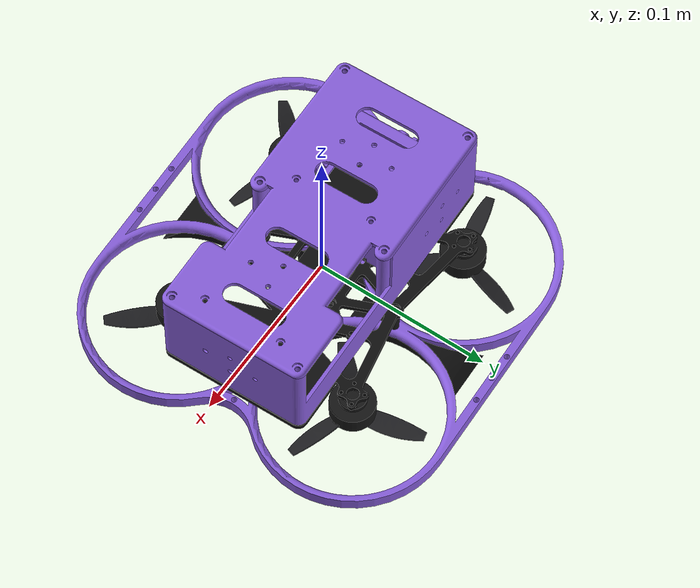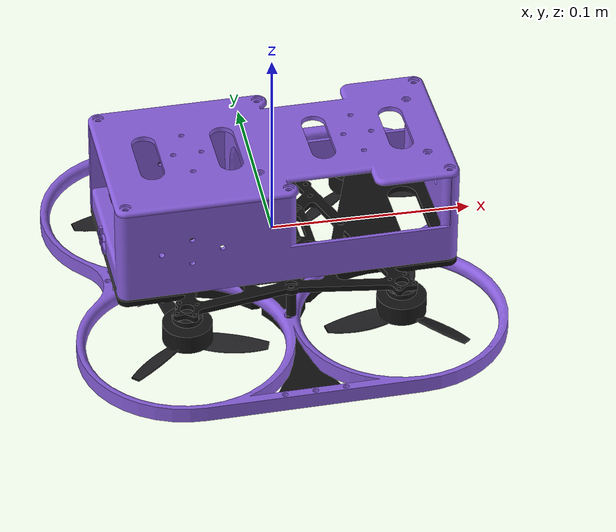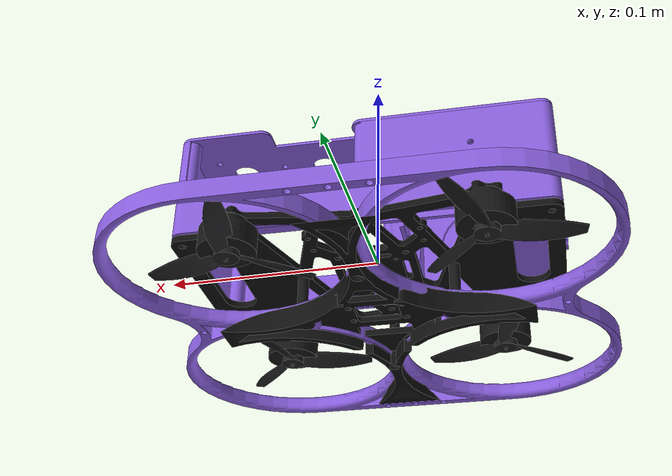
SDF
<?xml version="1.0" encoding="UTF-8"?>
<sdf version='1.9'>
  <model name='que'>
    <link name='base_link'>
      <inertial>
        <pose>0 0 0 0 0 0</pose>
        <mass>0.48</mass>
        <inertia>
          <ixx>1.346e-03</ixx>
          <iyy>1.735e-03</iyy>
          <izz>2.373e-03</izz>
          <ixy>-2.20e-05</ixy>
          <ixz>3.02e-05</ixz>
          <iyz>2.81e-06</iyz>
        </inertia>
      </inertial>
      <!-- 分组视觉：Gazebo 单 visual 只能单色，按零件分组配色（按真机照片：淡紫机身/保护圈、黑板材电机、烟色桨） -->
      <visual name='frame_visual'>
        <geometry><mesh><uri>model://que/meshes/frame.stl</uri><scale>0.001 0.001 0.001</scale></mesh></geometry>
        <material><ambient>0.02 0.02 0.02 1</ambient><diffuse>0.06 0.06 0.06 1</diffuse><specular>0.2 0.2 0.2 1</specular></material>
      </visual>
      <visual name='top_visual'>
        <geometry><mesh><uri>model://que/meshes/top.stl</uri><scale>0.001 0.001 0.001</scale></mesh></geometry>
        <material><ambient>0.21 0.15 0.34 1</ambient><diffuse>0.53 0.37 0.86 1</diffuse><specular>0.3 0.3 0.3 1</specular></material>
      </visual>
      <visual name='bay_visual'>
        <geometry><mesh><uri>model://que/meshes/bay.stl</uri><scale>0.001 0.001 0.001</scale></mesh></geometry>
        <material><ambient>0.21 0.15 0.34 1</ambient><diffuse>0.53 0.37 0.86 1</diffuse><specular>0.3 0.3 0.3 1</specular></material>
      </visual>
      <visual name='gear_visual'>
        <geometry><mesh><uri>model://que/meshes/gear.stl</uri><scale>0.001 0.001 0.001</scale></mesh></geometry>
        <material><ambient>0.02 0.02 0.02 1</ambient><diffuse>0.06 0.06 0.06 1</diffuse><specular>0.2 0.2 0.2 1</specular></material>
      </visual>
      <visual name='guard_visual'>
        <geometry><mesh><uri>model://que/meshes/guard.stl</uri><scale>0.001 0.001 0.001</scale></mesh></geometry>
        <material><ambient>0.21 0.15 0.34 1</ambient><diffuse>0.53 0.37 0.86 1</diffuse><specular>0.3 0.3 0.3 1</specular></material>
      </visual>
      <visual name='motors_visual'>
        <geometry><mesh><uri>model://que/meshes/motors.stl</uri><scale>0.001 0.001 0.001</scale></mesh></geometry>
        <material><ambient>0.03 0.03 0.03 1</ambient><diffuse>0.08 0.08 0.08 1</diffuse><specular>0.5 0.5 0.5 1</specular></material>
      </visual>
      <visual name='standoffs_visual'>
        <geometry><mesh><uri>model://que/meshes/standoffs.stl</uri><scale>0.001 0.001 0.001</scale></mesh></geometry>
        <material><ambient>0.03 0.03 0.03 1</ambient><diffuse>0.08 0.08 0.08 1</diffuse><specular>0.4 0.4 0.4 1</specular></material>
      </visual>
      <collision name='body_collision'>
        <geometry>
          <mesh>
            <uri>model://que/meshes/body.stl</uri>
            <scale>0.001 0.001 0.001</scale>
          </mesh>
        </geometry>
      </collision>
      <!-- 传感器三件套（PX4 gz 桥按名字订阅，缺了会 Preflight 缺传感器） -->
      <sensor name="air_pressure_sensor" type="air_pressure">
        <always_on>1</always_on>
        <update_rate>50</update_rate>
        <air_pressure>
          <pressure>
            <noise type="gaussian">
              <mean>0</mean>
              <stddev>0.01</stddev>
            </noise>
          </pressure>
        </air_pressure>
      </sensor>
      <sensor name="imu_sensor" type="imu">
        <always_on>1</always_on>
        <update_rate>250</update_rate>
        <imu>
          <angular_velocity>
            <x><noise type="gaussian"><mean>0</mean><stddev>0.00018665</stddev><dynamic_bias_stddev>0</dynamic_bias_stddev><dynamic_bias_correlation_time>1000</dynamic_bias_correlation_time></noise></x>
            <y><noise type="gaussian"><mean>0</mean><stddev>0.00018665</stddev><dynamic_bias_stddev>0</dynamic_bias_stddev><dynamic_bias_correlation_time>1000</dynamic_bias_correlation_time></noise></y>
            <z><noise type="gaussian"><mean>0</mean><stddev>0.00018665</stddev><dynamic_bias_stddev>0</dynamic_bias_stddev><dynamic_bias_correlation_time>1000</dynamic_bias_correlation_time></noise></z>
          </angular_velocity>
          <linear_acceleration>
            <x><noise type="gaussian"><mean>0</mean><stddev>0.00186</stddev><dynamic_bias_stddev>0</dynamic_bias_stddev><dynamic_bias_correlation_time>300</dynamic_bias_correlation_time></noise></x>
            <y><noise type="gaussian"><mean>0</mean><stddev>0.00186</stddev><dynamic_bias_stddev>0</dynamic_bias_stddev><dynamic_bias_correlation_time>300</dynamic_bias_correlation_time></noise></y>
            <z><noise type="gaussian"><mean>0</mean><stddev>0.00186</stddev><dynamic_bias_stddev>0</dynamic_bias_stddev><dynamic_bias_correlation_time>300</dynamic_bias_correlation_time></noise></z>
          </linear_acceleration>
        </imu>
      </sensor>
      <sensor name="navsat_sensor" type="navsat">
        <always_on>1</always_on>
        <update_rate>30</update_rate>
        <navsat>
          <position_sensing>
            <vertical>
              <!-- 垂直位置噪声置零（集群 GPS 高度修复：真机以光流定高，垂直噪声按 0 配） -->
              <noise type="gaussian">
                <mean>0</mean>
                <stddev>0</stddev>
              </noise>
            </vertical>
          </position_sensing>
        </navsat>
      </sensor>
    </link>

    <!-- 旋翼：位置 = CA_ROTOR 布局（FRD, 米）；桨平面在桨毂平面下 0.02m -->
    <link name='rotor_0'>
      <pose>0.0552 -0.0517 -0.02 0 0 0</pose>
      <inertial>
        <mass>0.008</mass>
        <inertia>
          <ixx>1.0e-06</ixx><iyy>1.0e-06</iyy><izz>2.0e-06</izz>
        </inertia>
      </inertial>
      <visual name="prop_visual">
        <material><ambient>0.03 0.03 0.03 1</ambient><diffuse>0.12 0.12 0.13 1</diffuse><specular>0.6 0.6 0.6 1</specular></material>
        <geometry>
          <mesh>
            <uri>model://que/meshes/prop_ccw.stl</uri>
            <scale>0.001 0.001 0.001</scale>
          </mesh>
        </geometry>
      </visual>
    </link>
    <joint name='rotor_0_joint' type='revolute'>
      <parent>base_link</parent>
      <child>rotor_0</child>
      <axis>
        <xyz>0 0 1</xyz>
        <limit><lower>-1e+16</lower><upper>1e+16</upper></limit>
      </axis>
    </joint>

    <link name='rotor_1'>
      <pose>-0.0552 0.0518 -0.02 0 0 0</pose>
      <inertial>
        <mass>0.008</mass>
        <inertia>
          <ixx>1.0e-06</ixx><iyy>1.0e-06</iyy><izz>2.0e-06</izz>
        </inertia>
      </inertial>
      <visual name="prop_visual">
        <material><ambient>0.03 0.03 0.03 1</ambient><diffuse>0.12 0.12 0.13 1</diffuse><specular>0.6 0.6 0.6 1</specular></material>
        <geometry>
          <mesh>
            <uri>model://que/meshes/prop_ccw.stl</uri>
            <scale>0.001 0.001 0.001</scale>
          </mesh>
        </geometry>
      </visual>
    </link>
    <joint name='rotor_1_joint' type='revolute'>
      <parent>base_link</parent>
      <child>rotor_1</child>
      <axis>
        <xyz>0 0 1</xyz>
        <limit><lower>-1e+16</lower><upper>1e+16</upper></limit>
      </axis>
    </joint>

    <link name='rotor_2'>
      <pose>0.0518 0.0552 -0.02 0 0 0</pose>
      <inertial>
        <mass>0.008</mass>
        <inertia>
          <ixx>1.0e-06</ixx><iyy>1.0e-06</iyy><izz>2.0e-06</izz>
        </inertia>
      </inertial>
      <visual name="prop_visual">
        <material><ambient>0.03 0.03 0.03 1</ambient><diffuse>0.12 0.12 0.13 1</diffuse><specular>0.6 0.6 0.6 1</specular></material>
        <geometry>
          <mesh>
            <uri>model://que/meshes/prop_cw.stl</uri>
            <scale>0.001 0.001 0.001</scale>
          </mesh>
        </geometry>
      </visual>
    </link>
    <joint name='rotor_2_joint' type='revolute'>
      <parent>base_link</parent>
      <child>rotor_2</child>
      <axis>
        <xyz>0 0 1</xyz>
        <limit><lower>-1e+16</lower><upper>1e+16</upper></limit>
      </axis>
    </joint>

    <link name='rotor_3'>
      <pose>-0.0518 -0.0552 -0.02 0 0 0</pose>
      <inertial>
        <mass>0.008</mass>
        <inertia>
          <ixx>1.0e-06</ixx><iyy>1.0e-06</iyy><izz>2.0e-06</izz>
        </inertia>
      </inertial>
      <visual name="prop_visual">
        <material><ambient>0.03 0.03 0.03 1</ambient><diffuse>0.12 0.12 0.13 1</diffuse><specular>0.6 0.6 0.6 1</specular></material>
        <geometry>
          <mesh>
            <uri>model://que/meshes/prop_cw.stl</uri>
            <scale>0.001 0.001 0.001</scale>
          </mesh>
        </geometry>
      </visual>
    </link>
    <joint name='rotor_3_joint' type='revolute'>
      <parent>base_link</parent>
      <child>rotor_3</child>
      <axis>
        <xyz>0 0 1</xyz>
        <limit><lower>-1e+16</lower><upper>1e+16</upper></limit>
      </axis>
    </joint>

    <!-- 动力插件：rotor_0 FR(ccw) / rotor_1 RL(ccw) / rotor_2 FL(cw) / rotor_3 RR(cw)，与 PX4 quad-x 一致 -->
    <plugin filename="gz-sim-multicopter-motor-model-system" name="gz::sim::systems::MulticopterMotorModel">
      <jointName>rotor_0_joint</jointName>
      <linkName>rotor_0</linkName>
      <turningDirection>ccw</turningDirection>
      <timeConstantUp>0.0125</timeConstantUp>
      <timeConstantDown>0.025</timeConstantDown>
      <maxRotVelocity>4650.0</maxRotVelocity>
      <motorConstant>2.2e-07</motorConstant>
      <momentConstant>0.01</momentConstant>
      <commandSubTopic>command/motor_speed</commandSubTopic>
      <motorNumber>0</motorNumber>
      <rotorDragCoefficient>1e-05</rotorDragCoefficient>
      <rollingMomentCoefficient>1e-06</rollingMomentCoefficient>
      <rotorVelocitySlowdownSim>10</rotorVelocitySlowdownSim>
      <motorType>velocity</motorType>
    </plugin>
    <plugin filename="gz-sim-multicopter-motor-model-system" name="gz::sim::systems::MulticopterMotorModel">
      <jointName>rotor_1_joint</jointName>
      <linkName>rotor_1</linkName>
      <turningDirection>ccw</turningDirection>
      <timeConstantUp>0.0125</timeConstantUp>
      <timeConstantDown>0.025</timeConstantDown>
      <maxRotVelocity>4650.0</maxRotVelocity>
      <motorConstant>2.2e-07</motorConstant>
      <momentConstant>0.01</momentConstant>
      <commandSubTopic>command/motor_speed</commandSubTopic>
      <motorNumber>1</motorNumber>
      <rotorDragCoefficient>1e-05</rotorDragCoefficient>
      <rollingMomentCoefficient>1e-06</rollingMomentCoefficient>
      <rotorVelocitySlowdownSim>10</rotorVelocitySlowdownSim>
      <motorType>velocity</motorType>
    </plugin>
    <plugin filename="gz-sim-multicopter-motor-model-system" name="gz::sim::systems::MulticopterMotorModel">
      <jointName>rotor_2_joint</jointName>
      <linkName>rotor_2</linkName>
      <turningDirection>cw</turningDirection>
      <timeConstantUp>0.0125</timeConstantUp>
      <timeConstantDown>0.025</timeConstantDown>
      <maxRotVelocity>4650.0</maxRotVelocity>
      <motorConstant>2.2e-07</motorConstant>
      <momentConstant>0.01</momentConstant>
      <commandSubTopic>command/motor_speed</commandSubTopic>
      <motorNumber>2</motorNumber>
      <rotorDragCoefficient>1e-05</rotorDragCoefficient>
      <rollingMomentCoefficient>1e-06</rollingMomentCoefficient>
      <rotorVelocitySlowdownSim>10</rotorVelocitySlowdownSim>
      <motorType>velocity</motorType>
    </plugin>
    <plugin filename="gz-sim-multicopter-motor-model-system" name="gz::sim::systems::MulticopterMotorModel">
      <jointName>rotor_3_joint</jointName>
      <linkName>rotor_3</linkName>
      <turningDirection>cw</turningDirection>
      <timeConstantUp>0.0125</timeConstantUp>
      <timeConstantDown>0.025</timeConstantDown>
      <maxRotVelocity>4650.0</maxRotVelocity>
      <motorConstant>2.2e-07</motorConstant>
      <momentConstant>0.01</momentConstant>
      <commandSubTopic>command/motor_speed</commandSubTopic>
      <motorNumber>3</motorNumber>
      <rotorDragCoefficient>1e-05</rotorDragCoefficient>
      <rollingMomentCoefficient>1e-06</rollingMomentCoefficient>
      <rotorVelocitySlowdownSim>10</rotorVelocitySlowdownSim>
      <motorType>velocity</motorType>
    </plugin>
  </model>
</sdf>
